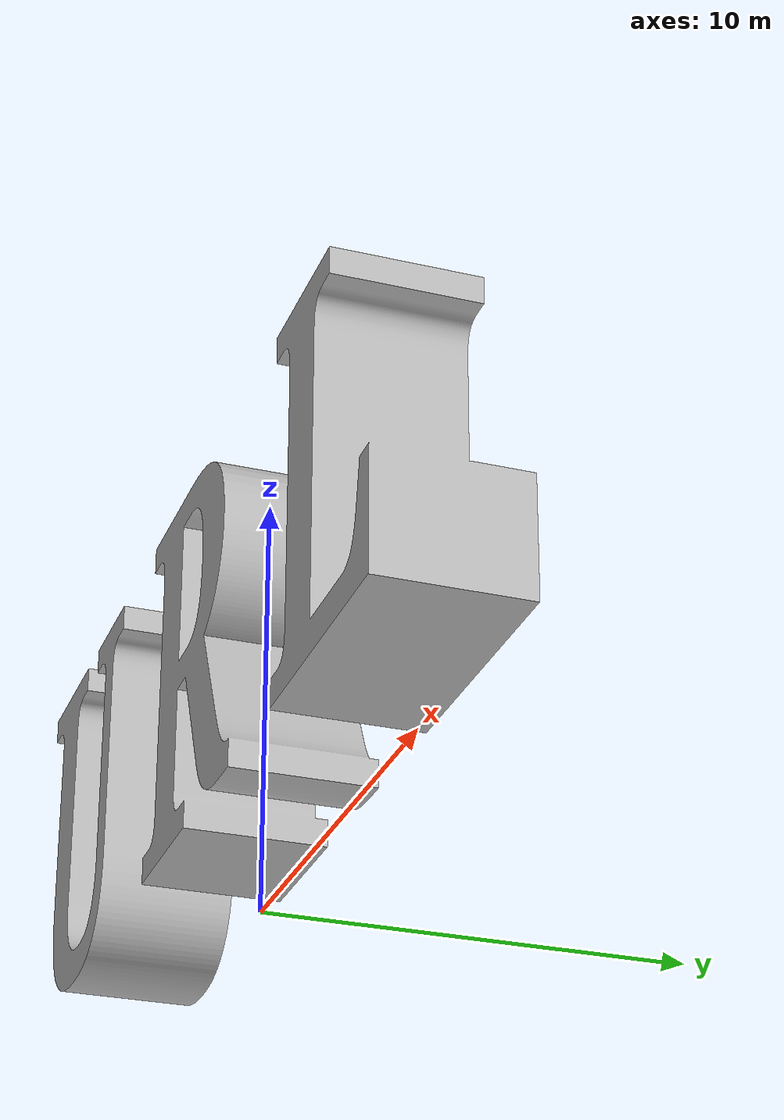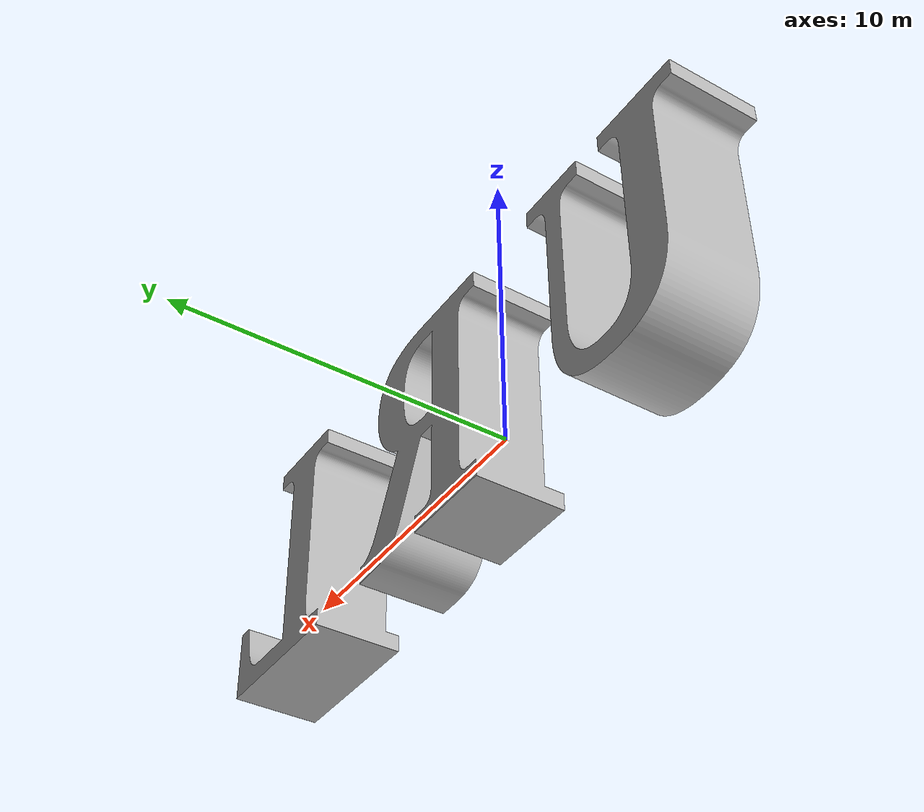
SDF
<sdf version='1.5'>
  <model name='text_URL'>
    <link name='URL'>
      <collision name='URL_inertia_collision'>
        <pose frame=''>0 0 6.05 1.570796 -0 0</pose>
        <geometry>
          <mesh>
            <scale>0.2 0.2 0.2</scale>
            <uri>model://text_description/meshes/URL.stl</uri>
          </mesh>
        </geometry>
        <surface>
          <contact>
            <ode>
              <min_depth>0.001</min_depth>
              <max_vel>0</max_vel>
            </ode>
          </contact>
          <friction>
            <ode/>
          </friction>
        </surface>
      </collision>
      <visual name='URL_inertia_visual'>
        <pose frame=''>0 0 6.05 1.570796 -0 0</pose>
        <geometry>
          <mesh>
            <scale>0.2 0.2 0.3</scale>
            <uri>model://text_description/meshes/URL.stl</uri>
          </mesh>
        </geometry>
      </visual>
      <kinematic>1</kinematic>
      <velocity_decay/>
    </link>
  </model>
</sdf>
